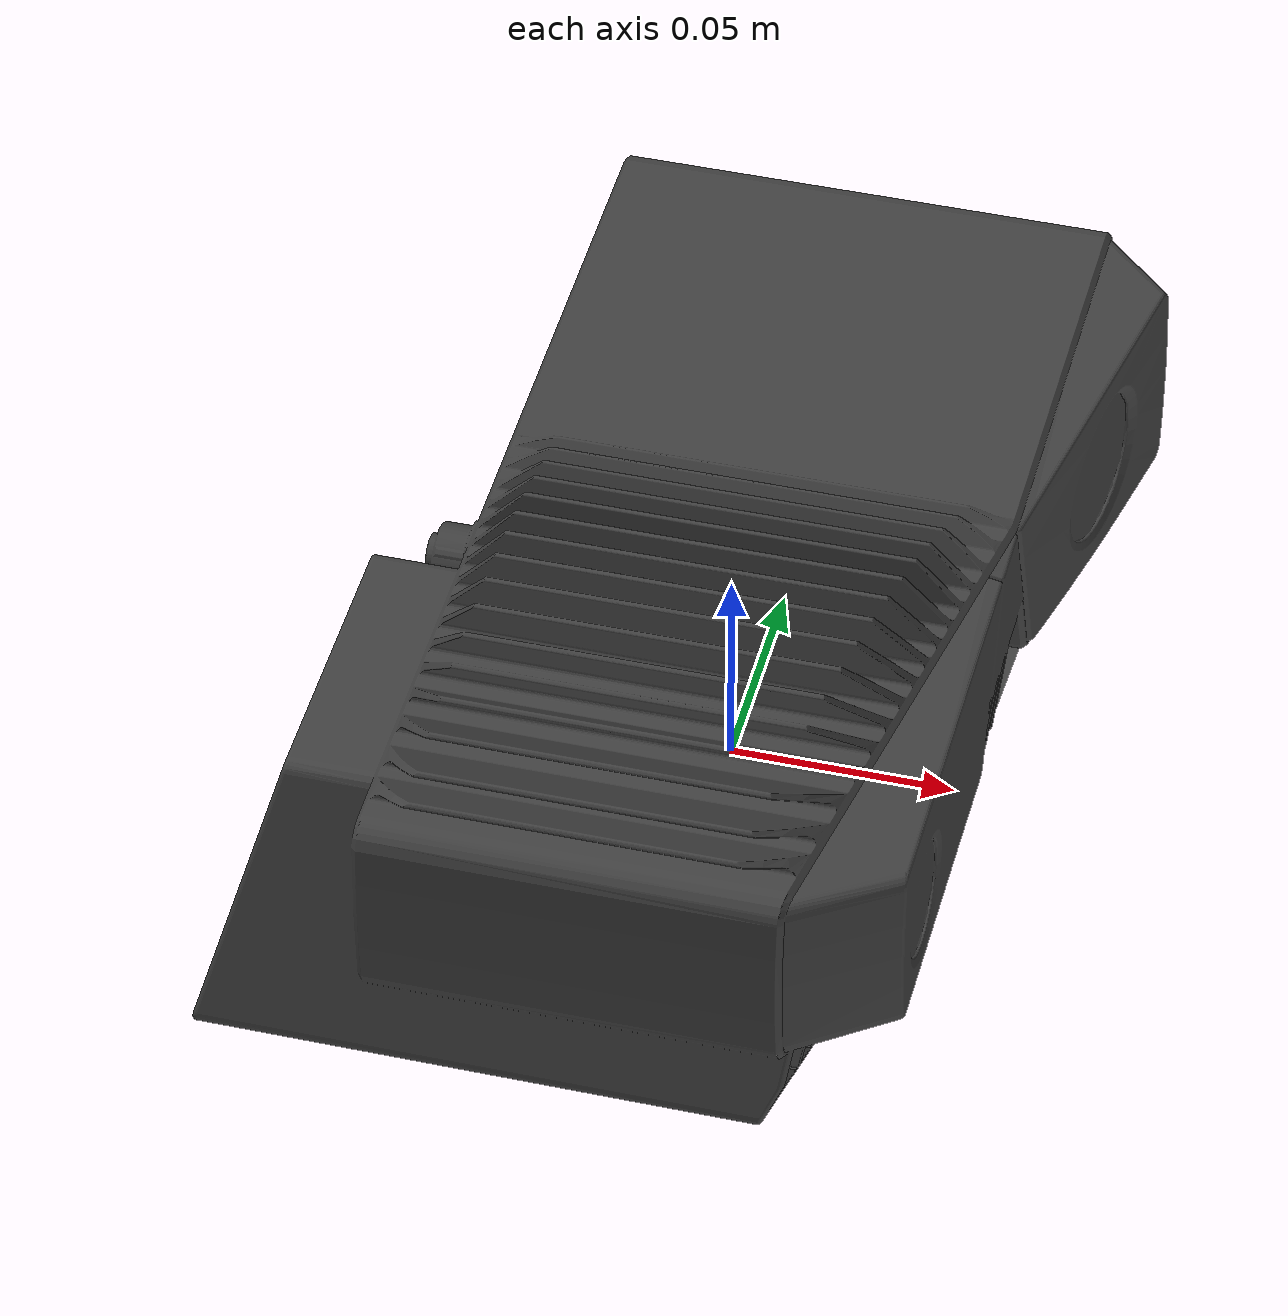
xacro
<?xml version="1.0"?>
<robot name="zivid_one_plus_camera_robot" xmlns:xacro="http://www.ros.org/wiki/xacro">
    <!-- Specify the type of the Zivid two camera -->
    <!--   Options: ZIVID_ONE_PLUS_S, ZIVID_ONE_PLUS_M, ZIVID_ONE_PLUS_L -->
    <xacro:arg name="type" default="ZIVID_ONE_PLUS_M" />

    <!-- Import and load Zivid camera -->
    <xacro:include filename="$(find zivid_description)/urdf/macros/zivid_one_plus_camera.xacro"/>
    <xacro:zivid_one_plus_camera prefix="" type="$(arg type)"/>
</robot>

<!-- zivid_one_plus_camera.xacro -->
<robot xmlns:xacro="http://ros.org/wiki/xacro">

    <!-- Import Rviz colors -->
    <xacro:include filename="$(find zivid_description)/urdf/zivid_materials.xacro" />

    <!-- Zivid One+ Optical Frame Angles -->
    <xacro:property name="angle_type_s" value="15.0" />
    <xacro:property name="angle_type_m" value="8.5" />
    <xacro:property name="angle_type_l" value="6.0" />

    <xacro:macro name="zivid_one_plus_camera" params="prefix type">
        <!-- Zivid Base Link -->
        <link name="${prefix}base_link">
            <!-- Visuals -->
            <visual>
                <origin xyz="-0.0030 -0.0758 0.0445" rpy="${0.5*pi} 0 ${0.5*pi}"/>
                <geometry>
                    <mesh filename="package://zivid_description/meshes/visual/zivid-one-plus.stl" scale="0.001 0.001 0.001"/>
                </geometry>
                <material name="zivid_gray"/>
            </visual>

            <!-- Collisions -->
            <collision>
                <origin xyz="-0.0030 -0.0758 0.0445" rpy="${0.5*pi} 0 ${0.5*pi}"/>
                <geometry>
                    <mesh filename="package://zivid_description/meshes/collision/zivid-one-plus.stl" scale="0.001 0.001 0.001"/>
                </geometry>
            </collision>
        </link>

        <!-- Zivid Optical Frame (Measurement Frame)-->
        <link name="${prefix}optical_frame"/>

        <!-- Set the angle of the optical frame based on the type -->
        <xacro:if value="${type == 'ZIVID_ONE_PLUS_S'}" >
            <xacro:property name="optical_frame_angle" value="${angle_type_s}" />
        </xacro:if>
        <xacro:if value="${type == 'ZIVID_ONE_PLUS_M'}" >
            <xacro:property name="optical_frame_angle" value="${angle_type_m}" />
        </xacro:if>
        <xacro:if value="${type == 'ZIVID_ONE_PLUS_L'}" >
            <xacro:property name="optical_frame_angle" value="${angle_type_l}" />
        </xacro:if>

        <!-- Zivid Optical (Measurement) Joint -->
        <joint name="${prefix}optical_joint" type="fixed">
            <origin xyz="0.065 0.062 0.0445" rpy="-${0.5*pi} 0 -${0.5*pi + optical_frame_angle/180*pi}"/>
            <parent link="${prefix}base_link"/>
            <child link="${prefix}optical_frame"/>
        </joint>
    </xacro:macro>
</robot>

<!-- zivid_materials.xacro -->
<robot>
    <material name="zivid_gray">
        <color rgba="0.25 0.25 0.25 1"/>
    </material>

    <material name="zivid_fov">
        <color rgba="0.15 0.6 1.0 0.5"/>
    </material>
</robot>
